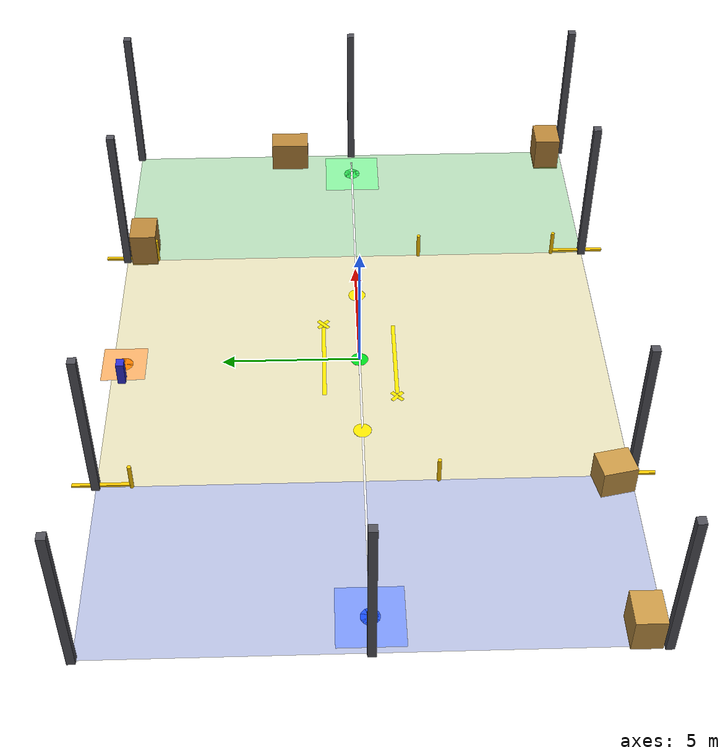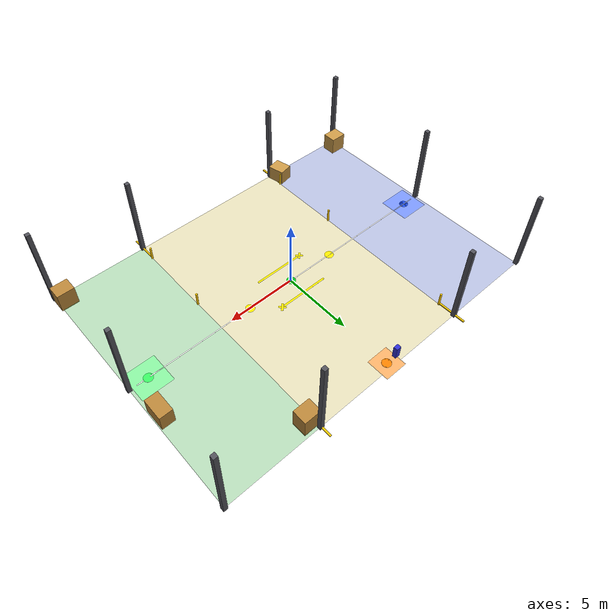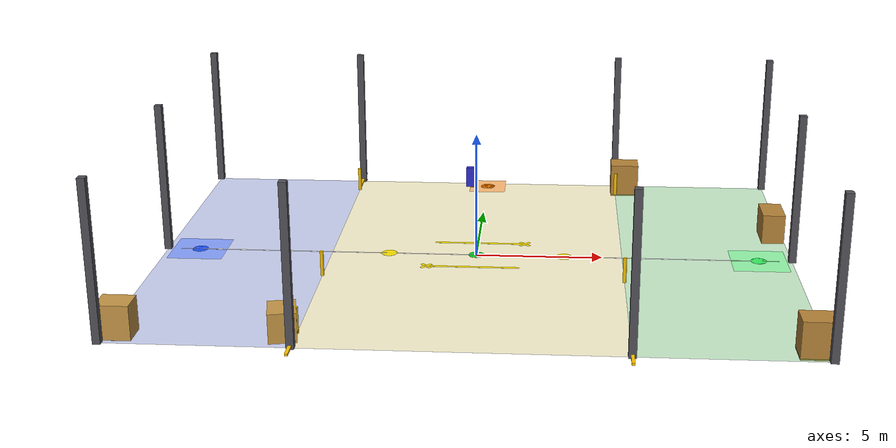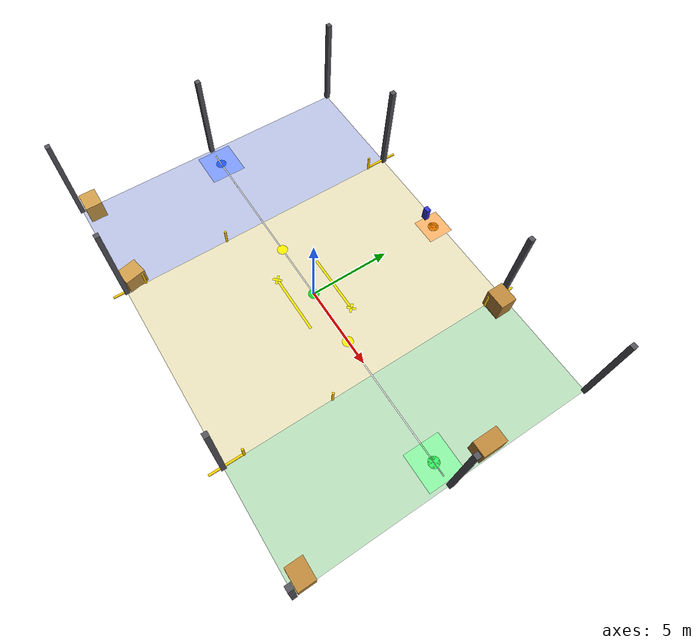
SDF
<sdf version="1.9">
 <world name="warehouse_world">
  <physics name="1ms" type="dart">
   <max_step_size>0.001</max_step_size>
   <real_time_factor>1.0</real_time_factor>
   <real_time_update_rate>1000</real_time_update_rate>
  </physics>
  <plugin filename="gz-sim-physics-system" name="gz::sim::systems::Physics"/>
  <plugin filename="gz-sim-user-commands-system" name="gz::sim::systems::UserCommands"/>
  <plugin filename="gz-sim-scene-broadcaster-system" name="gz::sim::systems::SceneBroadcaster"/>
  <plugin filename="gz-sim-sensors-system" name="gz::sim::systems::Sensors">
   <render_engine>ogre2</render_engine>
  </plugin>
  <plugin filename="gz-sim-contact-system" name="gz::sim::systems::Contact"/>
  <plugin filename="gz-sim-imu-system" name="gz::sim::systems::Imu"/>
  <scene>
   <ambient>0.35 0.35 0.35 1</ambient>
   <background>0.55 0.58 0.62 1</background>
   <shadows>true</shadows>
   <grid>false</grid>
  </scene>
  <light type="directional" name="sun">
   <pose>0 0 15 0 0 0</pose>
   <diffuse>0.85 0.85 0.75 1</diffuse>
   <specular>0.25 0.25 0.20 1</specular>
   <direction>-0.4 0.2 -0.9</direction>
  </light>
  <light type="point" name="lamp_w">
   <pose>-12 0 5.5 0 0 0</pose>
   <diffuse>1.0 0.96 0.88 1</diffuse>
   <specular>0.1 0.1 0.1 1</specular>
   <attenuation>
    <range>20</range>
    <linear>0.03</linear>
    <constant>0.3</constant>
    <quadratic>0.001</quadratic>
   </attenuation>
   <cast_shadows>false</cast_shadows>
  </light>
  <light type="point" name="lamp_cw">
   <pose>-5 0 5.5 0 0 0</pose>
   <diffuse>1.0 0.96 0.88 1</diffuse>
   <specular>0.1 0.1 0.1 1</specular>
   <attenuation>
    <range>20</range>
    <linear>0.03</linear>
    <constant>0.3</constant>
    <quadratic>0.001</quadratic>
   </attenuation>
   <cast_shadows>false</cast_shadows>
  </light>
  <light type="point" name="lamp_ce">
   <pose>5 0 5.5 0 0 0</pose>
   <diffuse>1.0 0.96 0.88 1</diffuse>
   <specular>0.1 0.1 0.1 1</specular>
   <attenuation>
    <range>20</range>
    <linear>0.03</linear>
    <constant>0.3</constant>
    <quadratic>0.001</quadratic>
   </attenuation>
   <cast_shadows>false</cast_shadows>
  </light>
  <light type="point" name="lamp_e">
   <pose>12 0 5.5 0 0 0</pose>
   <diffuse>1.0 0.96 0.88 1</diffuse>
   <specular>0.1 0.1 0.1 1</specular>
   <attenuation>
    <range>20</range>
    <linear>0.03</linear>
    <constant>0.3</constant>
    <quadratic>0.001</quadratic>
   </attenuation>
   <cast_shadows>false</cast_shadows>
  </light>
  <model name="floor_collision">
   <static>true</static>
   <pose>0 0 -0.015 0 0 0</pose>
   <link name="link">
    <collision name="collision">
     <geometry><box><size>32 22 0.03</size></box></geometry>
     <surface><friction><ode><mu>0.8</mu><mu2>0.8</mu2></ode></friction></surface>
    </collision>
   </link>
  </model>
  <model name="zone_raw_materials">
   <static>true</static>
   <pose>-9.15 0 0.002 0 0 0</pose>
   <link name="link">
    <visual name="visual">
     <geometry><box><size>6.7 18 0.002</size></box></geometry>
     <material><ambient>0.18 0.28 0.70 0.30</ambient><diffuse>0.18 0.28 0.70 0.30</diffuse></material>
    </visual>
   </link>
  </model>
  <model name="zone_semi_finished">
   <static>true</static>
   <pose>0 0 0.002 0 0 0</pose>
   <link name="link">
    <visual name="visual">
     <geometry><box><size>11.6 18 0.002</size></box></geometry>
     <material><ambient>0.72 0.62 0.05 0.25</ambient><diffuse>0.72 0.62 0.05 0.25</diffuse></material>
    </visual>
   </link>
  </model>
  <model name="zone_finished_goods">
   <static>true</static>
   <pose>9.15 0 0.002 0 0 0</pose>
   <link name="link">
    <visual name="visual">
     <geometry><box><size>6.7 18 0.002</size></box></geometry>
     <material><ambient>0.15 0.62 0.18 0.30</ambient><diffuse>0.15 0.62 0.18 0.30</diffuse></material>
    </visual>
   </link>
  </model>
  <model name="col_w_s">
   <static>true</static>
   <pose>-12.5 -9 3 0 0 0</pose>
   <link name="link">
    <visual name="v">
     <geometry><box><size>0.28 0.28 6</size></box></geometry>
     <material><ambient>0.30 0.30 0.32 1</ambient><diffuse>0.32 0.32 0.35 1</diffuse></material>
    </visual>
    <collision name="c"><geometry><box><size>0.28 0.28 6</size></box></geometry></collision>
   </link>
  </model>
  <model name="col_w_c">
   <static>true</static>
   <pose>-12.5 0 3 0 0 0</pose>
   <link name="link">
    <visual name="v">
     <geometry><box><size>0.28 0.28 6</size></box></geometry>
     <material><ambient>0.30 0.30 0.32 1</ambient><diffuse>0.32 0.32 0.35 1</diffuse></material>
    </visual>
    <collision name="c"><geometry><box><size>0.28 0.28 6</size></box></geometry></collision>
   </link>
  </model>
  <model name="col_w_n">
   <static>true</static>
   <pose>-12.5 9 3 0 0 0</pose>
   <link name="link">
    <visual name="v">
     <geometry><box><size>0.28 0.28 6</size></box></geometry>
     <material><ambient>0.30 0.30 0.32 1</ambient><diffuse>0.32 0.32 0.35 1</diffuse></material>
    </visual>
    <collision name="c"><geometry><box><size>0.28 0.28 6</size></box></geometry></collision>
   </link>
  </model>
  <model name="col_ab_s">
   <static>true</static>
   <pose>-5.8 -9 3 0 0 0</pose>
   <link name="link">
    <visual name="v">
     <geometry><box><size>0.28 0.28 6</size></box></geometry>
     <material><ambient>0.30 0.30 0.32 1</ambient><diffuse>0.32 0.32 0.35 1</diffuse></material>
    </visual>
    <collision name="c"><geometry><box><size>0.28 0.28 6</size></box></geometry></collision>
   </link>
  </model>
  <model name="col_ab_n">
   <static>true</static>
   <pose>-5.8 9 3 0 0 0</pose>
   <link name="link">
    <visual name="v">
     <geometry><box><size>0.28 0.28 6</size></box></geometry>
     <material><ambient>0.30 0.30 0.32 1</ambient><diffuse>0.32 0.32 0.35 1</diffuse></material>
    </visual>
    <collision name="c"><geometry><box><size>0.28 0.28 6</size></box></geometry></collision>
   </link>
  </model>
  <model name="col_cd_s">
   <static>true</static>
   <pose>5.8 -9 3 0 0 0</pose>
   <link name="link">
    <visual name="v">
     <geometry><box><size>0.28 0.28 6</size></box></geometry>
     <material><ambient>0.30 0.30 0.32 1</ambient><diffuse>0.32 0.32 0.35 1</diffuse></material>
    </visual>
    <collision name="c"><geometry><box><size>0.28 0.28 6</size></box></geometry></collision>
   </link>
  </model>
  <model name="col_cd_n">
   <static>true</static>
   <pose>5.8 9 3 0 0 0</pose>
   <link name="link">
    <visual name="v">
     <geometry><box><size>0.28 0.28 6</size></box></geometry>
     <material><ambient>0.30 0.30 0.32 1</ambient><diffuse>0.32 0.32 0.35 1</diffuse></material>
    </visual>
    <collision name="c"><geometry><box><size>0.28 0.28 6</size></box></geometry></collision>
   </link>
  </model>
  <model name="col_e_s">
   <static>true</static>
   <pose>12.5 -9 3 0 0 0</pose>
   <link name="link">
    <visual name="v">
     <geometry><box><size>0.28 0.28 6</size></box></geometry>
     <material><ambient>0.30 0.30 0.32 1</ambient><diffuse>0.32 0.32 0.35 1</diffuse></material>
    </visual>
    <collision name="c"><geometry><box><size>0.28 0.28 6</size></box></geometry></collision>
   </link>
  </model>
  <model name="col_e_c">
   <static>true</static>
   <pose>12.5 0 3 0 0 0</pose>
   <link name="link">
    <visual name="v">
     <geometry><box><size>0.28 0.28 6</size></box></geometry>
     <material><ambient>0.30 0.30 0.32 1</ambient><diffuse>0.32 0.32 0.35 1</diffuse></material>
    </visual>
    <collision name="c"><geometry><box><size>0.28 0.28 6</size></box></geometry></collision>
   </link>
  </model>
  <model name="col_e_n">
   <static>true</static>
   <pose>12.5 9 3 0 0 0</pose>
   <link name="link">
    <visual name="v">
     <geometry><box><size>0.28 0.28 6</size></box></geometry>
     <material><ambient>0.30 0.30 0.32 1</ambient><diffuse>0.32 0.32 0.35 1</diffuse></material>
    </visual>
    <collision name="c"><geometry><box><size>0.28 0.28 6</size></box></geometry></collision>
   </link>
  </model>
  <model name="boxes_rm_0">
   <static>true</static>
   <pose>-12 -8.3 0.65 0 0 0</pose>
   <link name="link">
    <visual name="v">
     <geometry><box><size>1.2 1.0 1.3</size></box></geometry>
     <material><ambient>0.79 0.60 0.28 1</ambient><diffuse>0.79 0.60 0.28 1</diffuse></material>
    </visual>
    <collision name="c"><geometry><box><size>1.2 1.0 1.3</size></box></geometry></collision>
   </link>
  </model>
  <model name="boxes_rm_1">
   <static>true</static>
   <pose>-6.2 -8.3 0.65 0 0 0.2</pose>
   <link name="link">
    <visual name="v">
     <geometry><box><size>1.0 1.2 1.1</size></box></geometry>
     <material><ambient>0.79 0.60 0.28 1</ambient><diffuse>0.79 0.60 0.28 1</diffuse></material>
    </visual>
    <collision name="c"><geometry><box><size>1.0 1.2 1.1</size></box></geometry></collision>
   </link>
  </model>
  <model name="boxes_fg_0">
   <static>true</static>
   <pose>12 -8.3 0.65 0 0 0</pose>
   <link name="link">
    <visual name="v">
     <geometry><box><size>1.2 1.0 1.4</size></box></geometry>
     <material><ambient>0.72 0.52 0.22 1</ambient><diffuse>0.72 0.52 0.22 1</diffuse></material>
    </visual>
    <collision name="c"><geometry><box><size>1.2 1.0 1.4</size></box></geometry></collision>
   </link>
  </model>
  <model name="boxes_fg_1">
   <static>true</static>
   <pose>6.2  8.3 0.65 0 0 0</pose>
   <link name="link">
    <visual name="v">
     <geometry><box><size>1.2 1.0 1.4</size></box></geometry>
     <material><ambient>0.72 0.52 0.22 1</ambient><diffuse>0.72 0.52 0.22 1</diffuse></material>
    </visual>
    <collision name="c"><geometry><box><size>1.2 1.0 1.4</size></box></geometry></collision>
   </link>
  </model>
  <model name="boxes_fg_2">
   <static>true</static>
   <pose>12  2.6  0.65 0 0 0</pose>
   <link name="link">
    <visual name="v">
     <geometry><box><size>0.9 1.5 1.2</size></box></geometry>
     <material><ambient>0.72 0.52 0.22 1</ambient><diffuse>0.72 0.52 0.22 1</diffuse></material>
    </visual>
    <collision name="c"><geometry><box><size>0.9 1.5 1.2</size></box></geometry></collision>
   </link>
  </model>
  <model name="boll_rm_sf_0">
   <static>true</static>
   <pose>-5.8 -7.8 0.5 0 0 0</pose>
   <link name="link">
    <visual name="v">
     <geometry><cylinder><radius>0.07</radius><length>1.0</length></cylinder></geometry>
     <material><ambient>1.0 0.78 0.0 1</ambient><diffuse>1.0 0.78 0.0 1</diffuse></material>
    </visual>
    <collision name="c">
     <geometry><cylinder><radius>0.07</radius><length>1.0</length></cylinder></geometry>
    </collision>
   </link>
  </model>
  <model name="boll_rm_sf_1">
   <static>true</static>
   <pose>-5.8 -2.5 0.5 0 0 0</pose>
   <link name="link">
    <visual name="v">
     <geometry><cylinder><radius>0.07</radius><length>1.0</length></cylinder></geometry>
     <material><ambient>1.0 0.78 0.0 1</ambient><diffuse>1.0 0.78 0.0 1</diffuse></material>
    </visual>
    <collision name="c">
     <geometry><cylinder><radius>0.07</radius><length>1.0</length></cylinder></geometry>
    </collision>
   </link>
  </model>
  <model name="boll_rm_sf_2">
   <static>true</static>
   <pose>-5.8  7.8 0.5 0 0 0</pose>
   <link name="link">
    <visual name="v">
     <geometry><cylinder><radius>0.07</radius><length>1.0</length></cylinder></geometry>
     <material><ambient>1.0 0.78 0.0 1</ambient><diffuse>1.0 0.78 0.0 1</diffuse></material>
    </visual>
    <collision name="c">
     <geometry><cylinder><radius>0.07</radius><length>1.0</length></cylinder></geometry>
    </collision>
   </link>
  </model>
  <model name="rail_rm_sf_s">
   <static>true</static>
   <pose>-5.8 -8.8 0.12 0 0 0</pose>
   <link name="link">
    <visual name="v">
     <geometry><box><size>0.12 2.0 0.08</size></box></geometry>
     <material><ambient>1.0 0.78 0.0 1</ambient><diffuse>1.0 0.78 0.0 1</diffuse></material>
    </visual>
    <collision name="c"><geometry><box><size>0.12 2.0 0.08</size></box></geometry></collision>
   </link>
  </model>
  <model name="rail_rm_sf_n">
   <static>true</static>
   <pose>-5.8  8.8 0.12 0 0 0</pose>
   <link name="link">
    <visual name="v">
     <geometry><box><size>0.12 2.0 0.08</size></box></geometry>
     <material><ambient>1.0 0.78 0.0 1</ambient><diffuse>1.0 0.78 0.0 1</diffuse></material>
    </visual>
    <collision name="c"><geometry><box><size>0.12 2.0 0.08</size></box></geometry></collision>
   </link>
  </model>
  <model name="boll_sf_fg_0">
   <static>true</static>
   <pose>5.8 -7.8 0.5 0 0 0</pose>
   <link name="link">
    <visual name="v">
     <geometry><cylinder><radius>0.07</radius><length>1.0</length></cylinder></geometry>
     <material><ambient>1.0 0.78 0.0 1</ambient><diffuse>1.0 0.78 0.0 1</diffuse></material>
    </visual>
    <collision name="c">
     <geometry><cylinder><radius>0.07</radius><length>1.0</length></cylinder></geometry>
    </collision>
   </link>
  </model>
  <model name="boll_sf_fg_1">
   <static>true</static>
   <pose>5.8 -2.5 0.5 0 0 0</pose>
   <link name="link">
    <visual name="v">
     <geometry><cylinder><radius>0.07</radius><length>1.0</length></cylinder></geometry>
     <material><ambient>1.0 0.78 0.0 1</ambient><diffuse>1.0 0.78 0.0 1</diffuse></material>
    </visual>
    <collision name="c">
     <geometry><cylinder><radius>0.07</radius><length>1.0</length></cylinder></geometry>
    </collision>
   </link>
  </model>
  <model name="boll_sf_fg_2">
   <static>true</static>
   <pose>5.8  7.8 0.5 0 0 0</pose>
   <link name="link">
    <visual name="v">
     <geometry><cylinder><radius>0.07</radius><length>1.0</length></cylinder></geometry>
     <material><ambient>1.0 0.78 0.0 1</ambient><diffuse>1.0 0.78 0.0 1</diffuse></material>
    </visual>
    <collision name="c">
     <geometry><cylinder><radius>0.07</radius><length>1.0</length></cylinder></geometry>
    </collision>
   </link>
  </model>
  <model name="rail_sf_fg_s">
   <static>true</static>
   <pose>5.8 -8.8 0.12 0 0 0</pose>
   <link name="link">
    <visual name="v">
     <geometry><box><size>0.12 2.0 0.08</size></box></geometry>
     <material><ambient>1.0 0.78 0.0 1</ambient><diffuse>1.0 0.78 0.0 1</diffuse></material>
    </visual>
    <collision name="c"><geometry><box><size>0.12 2.0 0.08</size></box></geometry></collision>
   </link>
  </model>
  <model name="rail_sf_fg_n">
   <static>true</static>
   <pose>5.8  8.8 0.12 0 0 0</pose>
   <link name="link">
    <visual name="v">
     <geometry><box><size>0.12 2.0 0.08</size></box></geometry>
     <material><ambient>1.0 0.78 0.0 1</ambient><diffuse>1.0 0.78 0.0 1</diffuse></material>
    </visual>
    <collision name="c"><geometry><box><size>0.12 2.0 0.08</size></box></geometry></collision>
   </link>
  </model>
  <model name="wp0_home">
   <static>true</static>
   <pose>0 0 0.003 0 0 0</pose>
   <link name="link">
    <visual name="v">
     <geometry><cylinder><radius>0.32</radius><length>0.002</length></cylinder></geometry>
     <material><ambient>0.0 0.85 0.12 1</ambient><diffuse>0.0 0.85 0.12 1</diffuse></material>
    </visual>
   </link>
  </model>
  <model name="wp1_rm_dock">
   <static>true</static>
   <pose>-11.2 0 0.003 0 0 0</pose>
   <link name="link">
    <visual name="v">
     <geometry><cylinder><radius>0.32</radius><length>0.002</length></cylinder></geometry>
     <material><ambient>0.12 0.32 1.0 1</ambient><diffuse>0.12 0.32 1.0 1</diffuse></material>
    </visual>
   </link>
  </model>
  <model name="wp2_sf_w">
   <static>true</static>
   <pose>-3.5 0 0.003 0 0 0</pose>
   <link name="link">
    <visual name="v">
     <geometry><cylinder><radius>0.32</radius><length>0.002</length></cylinder></geometry>
     <material><ambient>1.0 0.90 0.0 1</ambient><diffuse>1.0 0.90 0.0 1</diffuse></material>
    </visual>
   </link>
  </model>
  <model name="wp3_sf_e">
   <static>true</static>
   <pose>3.5 0 0.003 0 0 0</pose>
   <link name="link">
    <visual name="v">
     <geometry><cylinder><radius>0.32</radius><length>0.002</length></cylinder></geometry>
     <material><ambient>1.0 0.90 0.0 1</ambient><diffuse>1.0 0.90 0.0 1</diffuse></material>
    </visual>
   </link>
  </model>
  <model name="wp4_fg_dock">
   <static>true</static>
   <pose>11.2 0 0.003 0 0 0</pose>
   <link name="link">
    <visual name="v">
     <geometry><cylinder><radius>0.32</radius><length>0.002</length></cylinder></geometry>
     <material><ambient>0.22 0.95 0.38 1</ambient><diffuse>0.22 0.95 0.38 1</diffuse></material>
    </visual>
   </link>
  </model>
  <model name="wp5_charging">
   <static>true</static>
   <pose>0 8.6 0.003 0 0 0</pose>
   <link name="link">
    <visual name="v">
     <geometry><cylinder><radius>0.32</radius><length>0.002</length></cylinder></geometry>
     <material><ambient>1.0 0.50 0.0 1</ambient><diffuse>1.0 0.50 0.0 1</diffuse></material>
    </visual>
   </link>
  </model>
  <model name="lane_divider">
   <static>true</static>
   <pose>0 0 0.003 0 0 0</pose>
   <link name="link">
    <visual name="v">
     <geometry><box><size>24 0.07 0.002</size></box></geometry>
     <material><ambient>1 1 1 1</ambient><diffuse>1 1 1 1</diffuse></material>
    </visual>
   </link>
  </model>
  <model name="arr_e_shaft">
   <static>true</static>
   <pose>0 1.3 0.003 0 0 0</pose>
   <link name="link">
    <visual name="v">
     <geometry><box><size>3.5 0.14 0.002</size></box></geometry>
     <material><ambient>1.0 0.90 0.0 1</ambient><diffuse>1.0 0.90 0.0 1</diffuse></material>
    </visual>
   </link>
  </model>
  <model name="arr_e_h1">
   <static>true</static>
   <pose>1.9 1.3 0.003 0 0 0.7854</pose>
   <link name="link">
    <visual name="v">
     <geometry><box><size>0.55 0.14 0.002</size></box></geometry>
     <material><ambient>1.0 0.90 0.0 1</ambient><diffuse>1.0 0.90 0.0 1</diffuse></material>
    </visual>
   </link>
  </model>
  <model name="arr_e_h2">
   <static>true</static>
   <pose>1.9 1.3 0.003 0 0 -0.7854</pose>
   <link name="link">
    <visual name="v">
     <geometry><box><size>0.55 0.14 0.002</size></box></geometry>
     <material><ambient>1.0 0.90 0.0 1</ambient><diffuse>1.0 0.90 0.0 1</diffuse></material>
    </visual>
   </link>
  </model>
  <model name="arr_w_shaft">
   <static>true</static>
   <pose>0 -1.3 0.003 0 0 0</pose>
   <link name="link">
    <visual name="v">
     <geometry><box><size>3.5 0.14 0.002</size></box></geometry>
     <material><ambient>1.0 0.90 0.0 1</ambient><diffuse>1.0 0.90 0.0 1</diffuse></material>
    </visual>
   </link>
  </model>
  <model name="arr_w_h1">
   <static>true</static>
   <pose>-1.9 -1.3 0.003 0 0 2.3562</pose>
   <link name="link">
    <visual name="v">
     <geometry><box><size>0.55 0.14 0.002</size></box></geometry>
     <material><ambient>1.0 0.90 0.0 1</ambient><diffuse>1.0 0.90 0.0 1</diffuse></material>
    </visual>
   </link>
  </model>
  <model name="arr_w_h2">
   <static>true</static>
   <pose>-1.9 -1.3 0.003 0 0 -2.3562</pose>
   <link name="link">
    <visual name="v">
     <geometry><box><size>0.55 0.14 0.002</size></box></geometry>
     <material><ambient>1.0 0.90 0.0 1</ambient><diffuse>1.0 0.90 0.0 1</diffuse></material>
    </visual>
   </link>
  </model>
  <model name="dock_rm">
   <static>true</static>
   <pose>-11.2 0 0.003 0 0 0</pose>
   <link name="link">
    <visual name="v">
     <geometry><box><size>2.2 2.2 0.002</size></box></geometry>
     <material><ambient>0.12 0.32 1.0 0.55</ambient><diffuse>0.12 0.32 1.0 0.55</diffuse></material>
    </visual>
   </link>
  </model>
  <model name="dock_fg">
   <static>true</static>
   <pose>11.2 0 0.003 0 0 0</pose>
   <link name="link">
    <visual name="v">
     <geometry><box><size>2.2 2.2 0.002</size></box></geometry>
     <material><ambient>0.22 0.95 0.38 0.55</ambient><diffuse>0.22 0.95 0.38 0.55</diffuse></material>
    </visual>
   </link>
  </model>
  <model name="dock_charge">
   <static>true</static>
   <pose>0 8.6 0.003 0 0 0</pose>
   <link name="link">
    <visual name="v">
     <geometry><box><size>1.6 1.6 0.002</size></box></geometry>
     <material><ambient>1.0 0.50 0.0 0.55</ambient><diffuse>1.0 0.50 0.0 0.55</diffuse></material>
    </visual>
   </link>
  </model>
  <model name="charging_kiosk">
   <static>true</static>
   <pose>-0.8 8.6 0.45 0 0 0</pose>
   <link name="link">
    <visual name="v">
     <geometry><box><size>0.35 0.28 0.9</size></box></geometry>
     <material><ambient>0.12 0.12 0.78 1</ambient><diffuse>0.18 0.18 0.82 1</diffuse></material>
    </visual>
    <collision name="c"><geometry><box><size>0.35 0.28 0.9</size></box></geometry></collision>
   </link>
  </model>
 </world>
</sdf>
